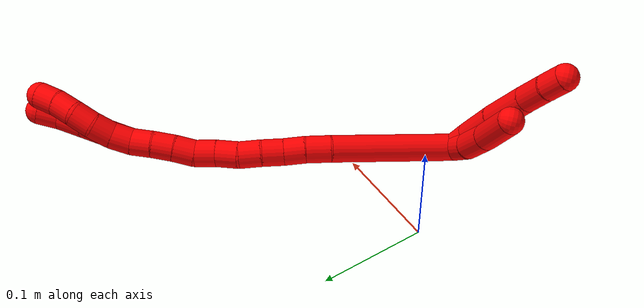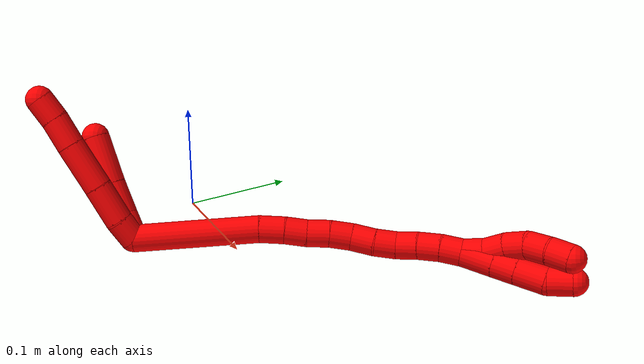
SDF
<sdf version="1.7">
 <world name="default">
  <model name="2">
   <static>0</static>
   <link name="2">
    <collision name="collision-cylinder-e_1_2_8">
     <pose>-0.008163 -0.005109 -0.004757 2.32048 -0.863274 -1.62729</pose>
     <geometry><cylinder><radius>0.0125</radius><length>0.021482</length></cylinder></geometry>
     <surface>
      <friction><ode><mu>1.16</mu><mu2>1.16</mu2><slip1>0</slip1><slip2>0</slip2></ode></friction>
      <contact><ode><kp>1e+06</kp><kd>1</kd><max_vel>0</max_vel><min_depth>0.001</min_depth></ode></contact>
     </surface>
    </collision>
    <visual name="visual-cylinder-e_1_2_8">
     <pose>-0.008163 -0.005109 -0.004757 2.32048 -0.863274 -1.62729</pose>
     <geometry><cylinder><radius>0.0125</radius><length>0.021482</length></cylinder></geometry>
     <material><ambient>1 0 0 1</ambient></material>
    </visual>
    <collision name="collision-cylinder-e_2_8_9">
     <pose>-0.031408 -0.016477 -0.016707 2.42559 -1.00711 -1.9485</pose>
     <geometry><cylinder><radius>0.0125</radius><length>0.035687</length></cylinder></geometry>
     <surface>
      <friction><ode><mu>1.16</mu><mu2>1.16</mu2><slip1>0</slip1><slip2>0</slip2></ode></friction>
      <contact><ode><kp>1e+06</kp><kd>1</kd><max_vel>0</max_vel><min_depth>0.001</min_depth></ode></contact>
     </surface>
    </collision>
    <visual name="visual-cylinder-e_2_8_9">
     <pose>-0.031408 -0.016477 -0.016707 2.42559 -1.00711 -1.9485</pose>
     <geometry><cylinder><radius>0.0125</radius><length>0.035687</length></cylinder></geometry>
     <material><ambient>1 0 0 1</ambient></material>
    </visual>
    <collision name="collision-cylinder-e_3_9_10">
     <pose>-0.064856 -0.029561 -0.033568 2.52685 -0.998323 -2.08712</pose>
     <geometry><cylinder><radius>0.0125</radius><length>0.043696</length></cylinder></geometry>
     <surface>
      <friction><ode><mu>1.16</mu><mu2>1.16</mu2><slip1>0</slip1><slip2>0</slip2></ode></friction>
      <contact><ode><kp>1e+06</kp><kd>1</kd><max_vel>0</max_vel><min_depth>0.001</min_depth></ode></contact>
     </surface>
    </collision>
    <visual name="visual-cylinder-e_3_9_10">
     <pose>-0.064856 -0.029561 -0.033568 2.52685 -0.998323 -2.08712</pose>
     <geometry><cylinder><radius>0.0125</radius><length>0.043696</length></cylinder></geometry>
     <material><ambient>1 0 0 1</ambient></material>
    </visual>
    <collision name="collision-cylinder-e_4_10_11">
     <pose>-0.094794 -0.040055 -0.049163 2.58738 -1.02874 -2.20901</pose>
     <geometry><cylinder><radius>0.0125</radius><length>0.02702</length></cylinder></geometry>
     <surface>
      <friction><ode><mu>1.16</mu><mu2>1.16</mu2><slip1>0</slip1><slip2>0</slip2></ode></friction>
      <contact><ode><kp>1e+06</kp><kd>1</kd><max_vel>0</max_vel><min_depth>0.001</min_depth></ode></contact>
     </surface>
    </collision>
    <visual name="visual-cylinder-e_4_10_11">
     <pose>-0.094794 -0.040055 -0.049163 2.58738 -1.02874 -2.20901</pose>
     <geometry><cylinder><radius>0.0125</radius><length>0.02702</length></cylinder></geometry>
     <material><ambient>1 0 0 1</ambient></material>
    </visual>
    <collision name="collision-cylinder-e_5_11_6">
     <pose>-0.115196 -0.047302 -0.060703 2.57399 -0.924691 -2.08258</pose>
     <geometry><cylinder><radius>0.0125</radius><length>0.022115</length></cylinder></geometry>
     <surface>
      <friction><ode><mu>1.16</mu><mu2>1.16</mu2><slip1>0</slip1><slip2>0</slip2></ode></friction>
      <contact><ode><kp>1e+06</kp><kd>1</kd><max_vel>0</max_vel><min_depth>0.001</min_depth></ode></contact>
     </surface>
    </collision>
    <visual name="visual-cylinder-e_5_11_6">
     <pose>-0.115196 -0.047302 -0.060703 2.57399 -0.924691 -2.08258</pose>
     <geometry><cylinder><radius>0.0125</radius><length>0.022115</length></cylinder></geometry>
     <material><ambient>1 0 0 1</ambient></material>
    </visual>
    <collision name="collision-cylinder-e_1_2_12">
     <pose>-0.010502 0.000434 -0.00511 -3.05677 -1.11653 3.0059</pose>
     <geometry><cylinder><radius>0.0125</radius><length>0.023374</length></cylinder></geometry>
     <surface>
      <friction><ode><mu>1.16</mu><mu2>1.16</mu2><slip1>0</slip1><slip2>0</slip2></ode></friction>
      <contact><ode><kp>1e+06</kp><kd>1</kd><max_vel>0</max_vel><min_depth>0.001</min_depth></ode></contact>
     </surface>
    </collision>
    <visual name="visual-cylinder-e_1_2_12">
     <pose>-0.010502 0.000434 -0.00511 -3.05677 -1.11653 3.0059</pose>
     <geometry><cylinder><radius>0.0125</radius><length>0.023374</length></cylinder></geometry>
     <material><ambient>1 0 0 1</ambient></material>
    </visual>
    <collision name="collision-cylinder-e_2_12_13">
     <pose>-0.035617 -0.001161 -0.015538 2.77706 -1.19933 -2.61491</pose>
     <geometry><cylinder><radius>0.0125</radius><length>0.031365</length></cylinder></geometry>
     <surface>
      <friction><ode><mu>1.16</mu><mu2>1.16</mu2><slip1>0</slip1><slip2>0</slip2></ode></friction>
      <contact><ode><kp>1e+06</kp><kd>1</kd><max_vel>0</max_vel><min_depth>0.001</min_depth></ode></contact>
     </surface>
    </collision>
    <visual name="visual-cylinder-e_2_12_13">
     <pose>-0.035617 -0.001161 -0.015538 2.77706 -1.19933 -2.61491</pose>
     <geometry><cylinder><radius>0.0125</radius><length>0.031365</length></cylinder></geometry>
     <material><ambient>1 0 0 1</ambient></material>
    </visual>
    <collision name="collision-cylinder-e_3_13_5">
     <pose>-0.071688 -0.006775 -0.027088 2.61957 -1.24752 -2.43076</pose>
     <geometry><cylinder><radius>0.0125</radius><length>0.04526</length></cylinder></geometry>
     <surface>
      <friction><ode><mu>1.16</mu><mu2>1.16</mu2><slip1>0</slip1><slip2>0</slip2></ode></friction>
      <contact><ode><kp>1e+06</kp><kd>1</kd><max_vel>0</max_vel><min_depth>0.001</min_depth></ode></contact>
     </surface>
    </collision>
    <visual name="visual-cylinder-e_3_13_5">
     <pose>-0.071688 -0.006775 -0.027088 2.61957 -1.24752 -2.43076</pose>
     <geometry><cylinder><radius>0.0125</radius><length>0.04526</length></cylinder></geometry>
     <material><ambient>1 0 0 1</ambient></material>
    </visual>
    <collision name="collision-cylinder-e_1_2_14">
     <pose>-0.003726 0.016753 0.054645 -0.297492 -0.065092 0.009758</pose>
     <geometry><cylinder><radius>0.0125</radius><length>0.114553</length></cylinder></geometry>
     <surface>
      <friction><ode><mu>1.16</mu><mu2>1.16</mu2><slip1>0</slip1><slip2>0</slip2></ode></friction>
      <contact><ode><kp>1e+06</kp><kd>1</kd><max_vel>0</max_vel><min_depth>0.001</min_depth></ode></contact>
     </surface>
    </collision>
    <visual name="visual-cylinder-e_1_2_14">
     <pose>-0.003726 0.016753 0.054645 -0.297492 -0.065092 0.009758</pose>
     <geometry><cylinder><radius>0.0125</radius><length>0.114553</length></cylinder></geometry>
     <material><ambient>1 0 0 1</ambient></material>
    </visual>
    <collision name="collision-cylinder-e_2_14_15">
     <pose>-0.006781 0.036778 0.120329 -0.28808 0.058132 -0.008434</pose>
     <geometry><cylinder><radius>0.0125</radius><length>0.023068</length></cylinder></geometry>
     <surface>
      <friction><ode><mu>1.16</mu><mu2>1.16</mu2><slip1>0</slip1><slip2>0</slip2></ode></friction>
      <contact><ode><kp>1e+06</kp><kd>1</kd><max_vel>0</max_vel><min_depth>0.001</min_depth></ode></contact>
     </surface>
    </collision>
    <visual name="visual-cylinder-e_2_14_15">
     <pose>-0.006781 0.036778 0.120329 -0.28808 0.058132 -0.008434</pose>
     <geometry><cylinder><radius>0.0125</radius><length>0.023068</length></cylinder></geometry>
     <material><ambient>1 0 0 1</ambient></material>
    </visual>
    <collision name="collision-cylinder-e_3_15_16">
     <pose>-0.004702 0.043424 0.140748 -0.345366 0.140392 -0.024526</pose>
     <geometry><cylinder><radius>0.0125</radius><length>0.020133</length></cylinder></geometry>
     <surface>
      <friction><ode><mu>1.16</mu><mu2>1.16</mu2><slip1>0</slip1><slip2>0</slip2></ode></friction>
      <contact><ode><kp>1e+06</kp><kd>1</kd><max_vel>0</max_vel><min_depth>0.001</min_depth></ode></contact>
     </surface>
    </collision>
    <visual name="visual-cylinder-e_3_15_16">
     <pose>-0.004702 0.043424 0.140748 -0.345366 0.140392 -0.024526</pose>
     <geometry><cylinder><radius>0.0125</radius><length>0.020133</length></cylinder></geometry>
     <material><ambient>1 0 0 1</ambient></material>
    </visual>
    <collision name="collision-cylinder-e_4_16_17">
     <pose>-0.002966 0.049937 0.159842 -0.312466 0.032136 -0.005062</pose>
     <geometry><cylinder><radius>0.0125</radius><length>0.020429</length></cylinder></geometry>
     <surface>
      <friction><ode><mu>1.16</mu><mu2>1.16</mu2><slip1>0</slip1><slip2>0</slip2></ode></friction>
      <contact><ode><kp>1e+06</kp><kd>1</kd><max_vel>0</max_vel><min_depth>0.001</min_depth></ode></contact>
     </surface>
    </collision>
    <visual name="visual-cylinder-e_4_16_17">
     <pose>-0.002966 0.049937 0.159842 -0.312466 0.032136 -0.005062</pose>
     <geometry><cylinder><radius>0.0125</radius><length>0.020429</length></cylinder></geometry>
     <material><ambient>1 0 0 1</ambient></material>
    </visual>
    <collision name="collision-cylinder-e_5_17_18">
     <pose>-0.001088 0.056321 0.179191 -0.324967 0.15125 -0.02484</pose>
     <geometry><cylinder><radius>0.0125</radius><length>0.020569</length></cylinder></geometry>
     <surface>
      <friction><ode><mu>1.16</mu><mu2>1.16</mu2><slip1>0</slip1><slip2>0</slip2></ode></friction>
      <contact><ode><kp>1e+06</kp><kd>1</kd><max_vel>0</max_vel><min_depth>0.001</min_depth></ode></contact>
     </surface>
    </collision>
    <visual name="visual-cylinder-e_5_17_18">
     <pose>-0.001088 0.056321 0.179191 -0.324967 0.15125 -0.02484</pose>
     <geometry><cylinder><radius>0.0125</radius><length>0.020569</length></cylinder></geometry>
     <material><ambient>1 0 0 1</ambient></material>
    </visual>
    <collision name="collision-cylinder-e_6_18_19">
     <pose>0.003004 0.060886 0.199043 -0.128347 0.241976 -0.015626</pose>
     <geometry><cylinder><radius>0.0125</radius><length>0.021221</length></cylinder></geometry>
     <surface>
      <friction><ode><mu>1.16</mu><mu2>1.16</mu2><slip1>0</slip1><slip2>0</slip2></ode></friction>
      <contact><ode><kp>1e+06</kp><kd>1</kd><max_vel>0</max_vel><min_depth>0.001</min_depth></ode></contact>
     </surface>
    </collision>
    <visual name="visual-cylinder-e_6_18_19">
     <pose>0.003004 0.060886 0.199043 -0.128347 0.241976 -0.015626</pose>
     <geometry><cylinder><radius>0.0125</radius><length>0.021221</length></cylinder></geometry>
     <material><ambient>1 0 0 1</ambient></material>
    </visual>
    <collision name="collision-cylinder-e_7_19_20">
     <pose>0.006945 0.06458 0.218886 -0.241974 0.140111 -0.017062</pose>
     <geometry><cylinder><radius>0.0125</radius><length>0.020026</length></cylinder></geometry>
     <surface>
      <friction><ode><mu>1.16</mu><mu2>1.16</mu2><slip1>0</slip1><slip2>0</slip2></ode></friction>
      <contact><ode><kp>1e+06</kp><kd>1</kd><max_vel>0</max_vel><min_depth>0.001</min_depth></ode></contact>
     </surface>
    </collision>
    <visual name="visual-cylinder-e_7_19_20">
     <pose>0.006945 0.06458 0.218886 -0.241974 0.140111 -0.017062</pose>
     <geometry><cylinder><radius>0.0125</radius><length>0.020026</length></cylinder></geometry>
     <material><ambient>1 0 0 1</ambient></material>
    </visual>
    <collision name="collision-cylinder-e_8_20_21">
     <pose>0.008585 0.067109 0.238508 -0.015331 0.024134 -0.000185</pose>
     <geometry><cylinder><radius>0.0125</radius><length>0.02</length></cylinder></geometry>
     <surface>
      <friction><ode><mu>1.16</mu><mu2>1.16</mu2><slip1>0</slip1><slip2>0</slip2></ode></friction>
      <contact><ode><kp>1e+06</kp><kd>1</kd><max_vel>0</max_vel><min_depth>0.001</min_depth></ode></contact>
     </surface>
    </collision>
    <visual name="visual-cylinder-e_8_20_21">
     <pose>0.008585 0.067109 0.238508 -0.015331 0.024134 -0.000185</pose>
     <geometry><cylinder><radius>0.0125</radius><length>0.02</length></cylinder></geometry>
     <material><ambient>1 0 0 1</ambient></material>
    </visual>
    <collision name="collision-cylinder-e_9_21_22">
     <pose>0.009881 0.067856 0.258431 -0.059739 0.105624 -0.003159</pose>
     <geometry><cylinder><radius>0.0125</radius><length>0.020001</length></cylinder></geometry>
     <surface>
      <friction><ode><mu>1.16</mu><mu2>1.16</mu2><slip1>0</slip1><slip2>0</slip2></ode></friction>
      <contact><ode><kp>1e+06</kp><kd>1</kd><max_vel>0</max_vel><min_depth>0.001</min_depth></ode></contact>
     </surface>
    </collision>
    <visual name="visual-cylinder-e_9_21_22">
     <pose>0.009881 0.067856 0.258431 -0.059739 0.105624 -0.003159</pose>
     <geometry><cylinder><radius>0.0125</radius><length>0.020001</length></cylinder></geometry>
     <material><ambient>1 0 0 1</ambient></material>
    </visual>
    <collision name="collision-cylinder-e_10_22_1">
     <pose>0.013096 0.069267 0.278087 -0.083726 0.21788 -0.009163</pose>
     <geometry><cylinder><radius>0.0125</radius><length>0.02</length></cylinder></geometry>
     <surface>
      <friction><ode><mu>1.16</mu><mu2>1.16</mu2><slip1>0</slip1><slip2>0</slip2></ode></friction>
      <contact><ode><kp>1e+06</kp><kd>1</kd><max_vel>0</max_vel><min_depth>0.001</min_depth></ode></contact>
     </surface>
    </collision>
    <visual name="visual-cylinder-e_10_22_1">
     <pose>0.013096 0.069267 0.278087 -0.083726 0.21788 -0.009163</pose>
     <geometry><cylinder><radius>0.0125</radius><length>0.02</length></cylinder></geometry>
     <material><ambient>1 0 0 1</ambient></material>
    </visual>
    <collision name="collision-cylinder-e_1_1_23">
     <pose>0.020001 0.067921 0.30201 0.151209 0.319053 0.024374</pose>
     <geometry><cylinder><radius>0.0125</radius><length>0.030241</length></cylinder></geometry>
     <surface>
      <friction><ode><mu>1.16</mu><mu2>1.16</mu2><slip1>0</slip1><slip2>0</slip2></ode></friction>
      <contact><ode><kp>1e+06</kp><kd>1</kd><max_vel>0</max_vel><min_depth>0.001</min_depth></ode></contact>
     </surface>
    </collision>
    <visual name="visual-cylinder-e_1_1_23">
     <pose>0.020001 0.067921 0.30201 0.151209 0.319053 0.024374</pose>
     <geometry><cylinder><radius>0.0125</radius><length>0.030241</length></cylinder></geometry>
     <material><ambient>1 0 0 1</ambient></material>
    </visual>
    <collision name="collision-cylinder-e_2_23_24">
     <pose>0.027949 0.064265 0.32598 0.151573 0.313421 0.023994</pose>
     <geometry><cylinder><radius>0.0125</radius><length>0.020791</length></cylinder></geometry>
     <surface>
      <friction><ode><mu>1.16</mu><mu2>1.16</mu2><slip1>0</slip1><slip2>0</slip2></ode></friction>
      <contact><ode><kp>1e+06</kp><kd>1</kd><max_vel>0</max_vel><min_depth>0.001</min_depth></ode></contact>
     </surface>
    </collision>
    <visual name="visual-cylinder-e_2_23_24">
     <pose>0.027949 0.064265 0.32598 0.151573 0.313421 0.023994</pose>
     <geometry><cylinder><radius>0.0125</radius><length>0.020791</length></cylinder></geometry>
     <material><ambient>1 0 0 1</ambient></material>
    </visual>
    <collision name="collision-cylinder-e_3_24_25">
     <pose>0.035295 0.060849 0.348481 0.149956 0.311319 0.023576</pose>
     <geometry><cylinder><radius>0.0125</radius><length>0.027038</length></cylinder></geometry>
     <surface>
      <friction><ode><mu>1.16</mu><mu2>1.16</mu2><slip1>0</slip1><slip2>0</slip2></ode></friction>
      <contact><ode><kp>1e+06</kp><kd>1</kd><max_vel>0</max_vel><min_depth>0.001</min_depth></ode></contact>
     </surface>
    </collision>
    <visual name="visual-cylinder-e_3_24_25">
     <pose>0.035295 0.060849 0.348481 0.149956 0.311319 0.023576</pose>
     <geometry><cylinder><radius>0.0125</radius><length>0.027038</length></cylinder></geometry>
     <material><ambient>1 0 0 1</ambient></material>
    </visual>
    <collision name="collision-cylinder-e_4_25_4">
     <pose>0.03967 0.059058 0.372167 -0.012054 0.021286 -0.000128</pose>
     <geometry><cylinder><radius>0.0125</radius><length>0.021929</length></cylinder></geometry>
     <surface>
      <friction><ode><mu>1.16</mu><mu2>1.16</mu2><slip1>0</slip1><slip2>0</slip2></ode></friction>
      <contact><ode><kp>1e+06</kp><kd>1</kd><max_vel>0</max_vel><min_depth>0.001</min_depth></ode></contact>
     </surface>
    </collision>
    <visual name="visual-cylinder-e_4_25_4">
     <pose>0.03967 0.059058 0.372167 -0.012054 0.021286 -0.000128</pose>
     <geometry><cylinder><radius>0.0125</radius><length>0.021929</length></cylinder></geometry>
     <material><ambient>1 0 0 1</ambient></material>
    </visual>
    <collision name="collision-cylinder-e_1_1_26">
     <pose>0.015049 0.069692 0.297807 0.039128 -0.020925 -0.000409</pose>
     <geometry><cylinder><radius>0.0125</radius><length>0.02</length></cylinder></geometry>
     <surface>
      <friction><ode><mu>1.16</mu><mu2>1.16</mu2><slip1>0</slip1><slip2>0</slip2></ode></friction>
      <contact><ode><kp>1e+06</kp><kd>1</kd><max_vel>0</max_vel><min_depth>0.001</min_depth></ode></contact>
     </surface>
    </collision>
    <visual name="visual-cylinder-e_1_1_26">
     <pose>0.015049 0.069692 0.297807 0.039128 -0.020925 -0.000409</pose>
     <geometry><cylinder><radius>0.0125</radius><length>0.02</length></cylinder></geometry>
     <material><ambient>1 0 0 1</ambient></material>
    </visual>
    <collision name="collision-cylinder-e_2_26_27">
     <pose>0.012404 0.067543 0.317335 0.182267 -0.246015 -0.022596</pose>
     <geometry><cylinder><radius>0.0125</radius><length>0.02</length></cylinder></geometry>
     <surface>
      <friction><ode><mu>1.16</mu><mu2>1.16</mu2><slip1>0</slip1><slip2>0</slip2></ode></friction>
      <contact><ode><kp>1e+06</kp><kd>1</kd><max_vel>0</max_vel><min_depth>0.001</min_depth></ode></contact>
     </surface>
    </collision>
    <visual name="visual-cylinder-e_2_26_27">
     <pose>0.012404 0.067543 0.317335 0.182267 -0.246015 -0.022596</pose>
     <geometry><cylinder><radius>0.0125</radius><length>0.02</length></cylinder></geometry>
     <material><ambient>1 0 0 1</ambient></material>
    </visual>
    <collision name="collision-cylinder-e_3_27_28">
     <pose>0.009408 0.062815 0.336406 0.302024 -0.056078 -0.008536</pose>
     <geometry><cylinder><radius>0.0125</radius><length>0.02</length></cylinder></geometry>
     <surface>
      <friction><ode><mu>1.16</mu><mu2>1.16</mu2><slip1>0</slip1><slip2>0</slip2></ode></friction>
      <contact><ode><kp>1e+06</kp><kd>1</kd><max_vel>0</max_vel><min_depth>0.001</min_depth></ode></contact>
     </surface>
    </collision>
    <visual name="visual-cylinder-e_3_27_28">
     <pose>0.009408 0.062815 0.336406 0.302024 -0.056078 -0.008536</pose>
     <geometry><cylinder><radius>0.0125</radius><length>0.02</length></cylinder></geometry>
     <material><ambient>1 0 0 1</ambient></material>
    </visual>
    <collision name="collision-cylinder-e_4_28_29">
     <pose>0.011322 0.05655 0.35505 0.347004 0.249978 0.044035</pose>
     <geometry><cylinder><radius>0.0125</radius><length>0.02</length></cylinder></geometry>
     <surface>
      <friction><ode><mu>1.16</mu><mu2>1.16</mu2><slip1>0</slip1><slip2>0</slip2></ode></friction>
      <contact><ode><kp>1e+06</kp><kd>1</kd><max_vel>0</max_vel><min_depth>0.001</min_depth></ode></contact>
     </surface>
    </collision>
    <visual name="visual-cylinder-e_4_28_29">
     <pose>0.011322 0.05655 0.35505 0.347004 0.249978 0.044035</pose>
     <geometry><cylinder><radius>0.0125</radius><length>0.02</length></cylinder></geometry>
     <material><ambient>1 0 0 1</ambient></material>
    </visual>
    <collision name="collision-cylinder-e_5_29_3">
     <pose>0.016978 0.051196 0.373415 0.218988 0.323927 0.035921</pose>
     <geometry><cylinder><radius>0.0125</radius><length>0.02</length></cylinder></geometry>
     <surface>
      <friction><ode><mu>1.16</mu><mu2>1.16</mu2><slip1>0</slip1><slip2>0</slip2></ode></friction>
      <contact><ode><kp>1e+06</kp><kd>1</kd><max_vel>0</max_vel><min_depth>0.001</min_depth></ode></contact>
     </surface>
    </collision>
    <visual name="visual-cylinder-e_5_29_3">
     <pose>0.016978 0.051196 0.373415 0.218988 0.323927 0.035921</pose>
     <geometry><cylinder><radius>0.0125</radius><length>0.02</length></cylinder></geometry>
     <material><ambient>1 0 0 1</ambient></material>
    </visual>
    <collision name="collision-sphere-3">
     <pose>0.020161 0.049136 0.382669 0 -0 0</pose>
     <geometry><sphere><radius>0.0125</radius></sphere></geometry>
     <surface>
      <friction><ode><mu>1.16</mu><mu2>1.16</mu2><slip1>0</slip1><slip2>0</slip2></ode></friction>
      <contact><ode><kp>1e+06</kp><kd>1</kd><max_vel>0</max_vel><min_depth>0.001</min_depth></ode></contact>
     </surface>
    </collision>
    <visual name="visual-sphere-3">
     <pose>0.020161 0.049136 0.382669 0 -0 0</pose>
     <geometry><sphere><radius>0.0125</radius></sphere></geometry>
     <material><ambient>1 0 0 1</ambient></material>
    </visual>
    <collision name="collision-sphere-29">
     <pose>0.013795 0.053255 0.364162 0 -0 0</pose>
     <geometry><sphere><radius>0.0125</radius></sphere></geometry>
     <surface>
      <friction><ode><mu>1.16</mu><mu2>1.16</mu2><slip1>0</slip1><slip2>0</slip2></ode></friction>
      <contact><ode><kp>1e+06</kp><kd>1</kd><max_vel>0</max_vel><min_depth>0.001</min_depth></ode></contact>
     </surface>
    </collision>
    <visual name="visual-sphere-29">
     <pose>0.013795 0.053255 0.364162 0 -0 0</pose>
     <geometry><sphere><radius>0.0125</radius></sphere></geometry>
     <material><ambient>1 0 0 1</ambient></material>
    </visual>
    <collision name="collision-sphere-28">
     <pose>0.008848 0.059845 0.345938 0 -0 0</pose>
     <geometry><sphere><radius>0.0125</radius></sphere></geometry>
     <surface>
      <friction><ode><mu>1.16</mu><mu2>1.16</mu2><slip1>0</slip1><slip2>0</slip2></ode></friction>
      <contact><ode><kp>1e+06</kp><kd>1</kd><max_vel>0</max_vel><min_depth>0.001</min_depth></ode></contact>
     </surface>
    </collision>
    <visual name="visual-sphere-28">
     <pose>0.008848 0.059845 0.345938 0 -0 0</pose>
     <geometry><sphere><radius>0.0125</radius></sphere></geometry>
     <material><ambient>1 0 0 1</ambient></material>
    </visual>
    <collision name="collision-sphere-27">
     <pose>0.009969 0.065785 0.326874 0 -0 0</pose>
     <geometry><sphere><radius>0.0125</radius></sphere></geometry>
     <surface>
      <friction><ode><mu>1.16</mu><mu2>1.16</mu2><slip1>0</slip1><slip2>0</slip2></ode></friction>
      <contact><ode><kp>1e+06</kp><kd>1</kd><max_vel>0</max_vel><min_depth>0.001</min_depth></ode></contact>
     </surface>
    </collision>
    <visual name="visual-sphere-27">
     <pose>0.009969 0.065785 0.326874 0 -0 0</pose>
     <geometry><sphere><radius>0.0125</radius></sphere></geometry>
     <material><ambient>1 0 0 1</ambient></material>
    </visual>
    <collision name="collision-sphere-26">
     <pose>0.01484 0.069301 0.307797 0 -0 0</pose>
     <geometry><sphere><radius>0.0125</radius></sphere></geometry>
     <surface>
      <friction><ode><mu>1.16</mu><mu2>1.16</mu2><slip1>0</slip1><slip2>0</slip2></ode></friction>
      <contact><ode><kp>1e+06</kp><kd>1</kd><max_vel>0</max_vel><min_depth>0.001</min_depth></ode></contact>
     </surface>
    </collision>
    <visual name="visual-sphere-26">
     <pose>0.01484 0.069301 0.307797 0 -0 0</pose>
     <geometry><sphere><radius>0.0125</radius></sphere></geometry>
     <material><ambient>1 0 0 1</ambient></material>
    </visual>
    <collision name="collision-sphere-4">
     <pose>0.039903 0.05919 0.383128 0 -0 0</pose>
     <geometry><sphere><radius>0.0125</radius></sphere></geometry>
     <surface>
      <friction><ode><mu>1.16</mu><mu2>1.16</mu2><slip1>0</slip1><slip2>0</slip2></ode></friction>
      <contact><ode><kp>1e+06</kp><kd>1</kd><max_vel>0</max_vel><min_depth>0.001</min_depth></ode></contact>
     </surface>
    </collision>
    <visual name="visual-sphere-4">
     <pose>0.039903 0.05919 0.383128 0 -0 0</pose>
     <geometry><sphere><radius>0.0125</radius></sphere></geometry>
     <material><ambient>1 0 0 1</ambient></material>
    </visual>
    <collision name="collision-sphere-25">
     <pose>0.039436 0.058926 0.361206 0 -0 0</pose>
     <geometry><sphere><radius>0.0125</radius></sphere></geometry>
     <surface>
      <friction><ode><mu>1.16</mu><mu2>1.16</mu2><slip1>0</slip1><slip2>0</slip2></ode></friction>
      <contact><ode><kp>1e+06</kp><kd>1</kd><max_vel>0</max_vel><min_depth>0.001</min_depth></ode></contact>
     </surface>
    </collision>
    <visual name="visual-sphere-25">
     <pose>0.039436 0.058926 0.361206 0 -0 0</pose>
     <geometry><sphere><radius>0.0125</radius></sphere></geometry>
     <material><ambient>1 0 0 1</ambient></material>
    </visual>
    <collision name="collision-sphere-24">
     <pose>0.031154 0.062771 0.335756 0 -0 0</pose>
     <geometry><sphere><radius>0.0125</radius></sphere></geometry>
     <surface>
      <friction><ode><mu>1.16</mu><mu2>1.16</mu2><slip1>0</slip1><slip2>0</slip2></ode></friction>
      <contact><ode><kp>1e+06</kp><kd>1</kd><max_vel>0</max_vel><min_depth>0.001</min_depth></ode></contact>
     </surface>
    </collision>
    <visual name="visual-sphere-24">
     <pose>0.031154 0.062771 0.335756 0 -0 0</pose>
     <geometry><sphere><radius>0.0125</radius></sphere></geometry>
     <material><ambient>1 0 0 1</ambient></material>
    </visual>
    <collision name="collision-sphere-23">
     <pose>0.024744 0.065758 0.316204 0 -0 0</pose>
     <geometry><sphere><radius>0.0125</radius></sphere></geometry>
     <surface>
      <friction><ode><mu>1.16</mu><mu2>1.16</mu2><slip1>0</slip1><slip2>0</slip2></ode></friction>
      <contact><ode><kp>1e+06</kp><kd>1</kd><max_vel>0</max_vel><min_depth>0.001</min_depth></ode></contact>
     </surface>
    </collision>
    <visual name="visual-sphere-23">
     <pose>0.024744 0.065758 0.316204 0 -0 0</pose>
     <geometry><sphere><radius>0.0125</radius></sphere></geometry>
     <material><ambient>1 0 0 1</ambient></material>
    </visual>
    <collision name="collision-sphere-1">
     <pose>0.015258 0.070083 0.287817 0 -0 0</pose>
     <geometry><sphere><radius>0.0125</radius></sphere></geometry>
     <surface>
      <friction><ode><mu>1.16</mu><mu2>1.16</mu2><slip1>0</slip1><slip2>0</slip2></ode></friction>
      <contact><ode><kp>1e+06</kp><kd>1</kd><max_vel>0</max_vel><min_depth>0.001</min_depth></ode></contact>
     </surface>
    </collision>
    <visual name="visual-sphere-1">
     <pose>0.015258 0.070083 0.287817 0 -0 0</pose>
     <geometry><sphere><radius>0.0125</radius></sphere></geometry>
     <material><ambient>1 0 0 1</ambient></material>
    </visual>
    <collision name="collision-sphere-22">
     <pose>0.010935 0.06845 0.268358 0 -0 0</pose>
     <geometry><sphere><radius>0.0125</radius></sphere></geometry>
     <surface>
      <friction><ode><mu>1.16</mu><mu2>1.16</mu2><slip1>0</slip1><slip2>0</slip2></ode></friction>
      <contact><ode><kp>1e+06</kp><kd>1</kd><max_vel>0</max_vel><min_depth>0.001</min_depth></ode></contact>
     </surface>
    </collision>
    <visual name="visual-sphere-22">
     <pose>0.010935 0.06845 0.268358 0 -0 0</pose>
     <geometry><sphere><radius>0.0125</radius></sphere></geometry>
     <material><ambient>1 0 0 1</ambient></material>
    </visual>
    <collision name="collision-sphere-21">
     <pose>0.008826 0.067263 0.248504 0 -0 0</pose>
     <geometry><sphere><radius>0.0125</radius></sphere></geometry>
     <surface>
      <friction><ode><mu>1.16</mu><mu2>1.16</mu2><slip1>0</slip1><slip2>0</slip2></ode></friction>
      <contact><ode><kp>1e+06</kp><kd>1</kd><max_vel>0</max_vel><min_depth>0.001</min_depth></ode></contact>
     </surface>
    </collision>
    <visual name="visual-sphere-21">
     <pose>0.008826 0.067263 0.248504 0 -0 0</pose>
     <geometry><sphere><radius>0.0125</radius></sphere></geometry>
     <material><ambient>1 0 0 1</ambient></material>
    </visual>
    <collision name="collision-sphere-6">
     <pose>-0.124025 -0.050881 -0.066317 0 -0 0</pose>
     <geometry><sphere><radius>0.0125</radius></sphere></geometry>
     <surface>
      <friction><ode><mu>1.16</mu><mu2>1.16</mu2><slip1>0</slip1><slip2>0</slip2></ode></friction>
      <contact><ode><kp>1e+06</kp><kd>1</kd><max_vel>0</max_vel><min_depth>0.001</min_depth></ode></contact>
     </surface>
    </collision>
    <visual name="visual-sphere-6">
     <pose>-0.124025 -0.050881 -0.066317 0 -0 0</pose>
     <geometry><sphere><radius>0.0125</radius></sphere></geometry>
     <material><ambient>1 0 0 1</ambient></material>
    </visual>
    <collision name="collision-sphere-11">
     <pose>-0.106367 -0.043723 -0.055089 0 -0 0</pose>
     <geometry><sphere><radius>0.0125</radius></sphere></geometry>
     <surface>
      <friction><ode><mu>1.16</mu><mu2>1.16</mu2><slip1>0</slip1><slip2>0</slip2></ode></friction>
      <contact><ode><kp>1e+06</kp><kd>1</kd><max_vel>0</max_vel><min_depth>0.001</min_depth></ode></contact>
     </surface>
    </collision>
    <visual name="visual-sphere-11">
     <pose>-0.106367 -0.043723 -0.055089 0 -0 0</pose>
     <geometry><sphere><radius>0.0125</radius></sphere></geometry>
     <material><ambient>1 0 0 1</ambient></material>
    </visual>
    <collision name="collision-sphere-10">
     <pose>-0.083221 -0.036387 -0.043237 0 -0 0</pose>
     <geometry><sphere><radius>0.0125</radius></sphere></geometry>
     <surface>
      <friction><ode><mu>1.16</mu><mu2>1.16</mu2><slip1>0</slip1><slip2>0</slip2></ode></friction>
      <contact><ode><kp>1e+06</kp><kd>1</kd><max_vel>0</max_vel><min_depth>0.001</min_depth></ode></contact>
     </surface>
    </collision>
    <visual name="visual-sphere-10">
     <pose>-0.083221 -0.036387 -0.043237 0 -0 0</pose>
     <geometry><sphere><radius>0.0125</radius></sphere></geometry>
     <material><ambient>1 0 0 1</ambient></material>
    </visual>
    <collision name="collision-sphere-9">
     <pose>-0.046491 -0.022734 -0.023899 0 -0 0</pose>
     <geometry><sphere><radius>0.0125</radius></sphere></geometry>
     <surface>
      <friction><ode><mu>1.16</mu><mu2>1.16</mu2><slip1>0</slip1><slip2>0</slip2></ode></friction>
      <contact><ode><kp>1e+06</kp><kd>1</kd><max_vel>0</max_vel><min_depth>0.001</min_depth></ode></contact>
     </surface>
    </collision>
    <visual name="visual-sphere-9">
     <pose>-0.046491 -0.022734 -0.023899 0 -0 0</pose>
     <geometry><sphere><radius>0.0125</radius></sphere></geometry>
     <material><ambient>1 0 0 1</ambient></material>
    </visual>
    <collision name="collision-sphere-2">
     <geometry><sphere><radius>0.0125</radius></sphere></geometry>
     <surface>
      <friction><ode><mu>1.16</mu><mu2>1.16</mu2><slip1>0</slip1><slip2>0</slip2></ode></friction>
      <contact><ode><kp>1e+06</kp><kd>1</kd><max_vel>0</max_vel><min_depth>0.001</min_depth></ode></contact>
     </surface>
    </collision>
    <visual name="visual-sphere-2">
     <geometry><sphere><radius>0.0125</radius></sphere></geometry>
     <material><ambient>1 0 0 1</ambient></material>
    </visual>
    <collision name="collision-sphere-19">
     <pose>0.005547 0.062205 0.209259 0 -0 0</pose>
     <geometry><sphere><radius>0.0125</radius></sphere></geometry>
     <surface>
      <friction><ode><mu>1.16</mu><mu2>1.16</mu2><slip1>0</slip1><slip2>0</slip2></ode></friction>
      <contact><ode><kp>1e+06</kp><kd>1</kd><max_vel>0</max_vel><min_depth>0.001</min_depth></ode></contact>
     </surface>
    </collision>
    <visual name="visual-sphere-19">
     <pose>0.005547 0.062205 0.209259 0 -0 0</pose>
     <geometry><sphere><radius>0.0125</radius></sphere></geometry>
     <material><ambient>1 0 0 1</ambient></material>
    </visual>
    <collision name="collision-sphere-8">
     <pose>-0.016325 -0.010219 -0.009514 0 -0 0</pose>
     <geometry><sphere><radius>0.0125</radius></sphere></geometry>
     <surface>
      <friction><ode><mu>1.16</mu><mu2>1.16</mu2><slip1>0</slip1><slip2>0</slip2></ode></friction>
      <contact><ode><kp>1e+06</kp><kd>1</kd><max_vel>0</max_vel><min_depth>0.001</min_depth></ode></contact>
     </surface>
    </collision>
    <visual name="visual-sphere-8">
     <pose>-0.016325 -0.010219 -0.009514 0 -0 0</pose>
     <geometry><sphere><radius>0.0125</radius></sphere></geometry>
     <material><ambient>1 0 0 1</ambient></material>
    </visual>
    <collision name="collision-sphere-12">
     <pose>-0.021004 0.000869 -0.01022 0 -0 0</pose>
     <geometry><sphere><radius>0.0125</radius></sphere></geometry>
     <surface>
      <friction><ode><mu>1.16</mu><mu2>1.16</mu2><slip1>0</slip1><slip2>0</slip2></ode></friction>
      <contact><ode><kp>1e+06</kp><kd>1</kd><max_vel>0</max_vel><min_depth>0.001</min_depth></ode></contact>
     </surface>
    </collision>
    <visual name="visual-sphere-12">
     <pose>-0.021004 0.000869 -0.01022 0 -0 0</pose>
     <geometry><sphere><radius>0.0125</radius></sphere></geometry>
     <material><ambient>1 0 0 1</ambient></material>
    </visual>
    <collision name="collision-sphere-13">
     <pose>-0.05023 -0.00319 -0.020857 0 -0 0</pose>
     <geometry><sphere><radius>0.0125</radius></sphere></geometry>
     <surface>
      <friction><ode><mu>1.16</mu><mu2>1.16</mu2><slip1>0</slip1><slip2>0</slip2></ode></friction>
      <contact><ode><kp>1e+06</kp><kd>1</kd><max_vel>0</max_vel><min_depth>0.001</min_depth></ode></contact>
     </surface>
    </collision>
    <visual name="visual-sphere-13">
     <pose>-0.05023 -0.00319 -0.020857 0 -0 0</pose>
     <geometry><sphere><radius>0.0125</radius></sphere></geometry>
     <material><ambient>1 0 0 1</ambient></material>
    </visual>
    <collision name="collision-sphere-5">
     <pose>-0.093146 -0.010359 -0.03332 0 -0 0</pose>
     <geometry><sphere><radius>0.0125</radius></sphere></geometry>
     <surface>
      <friction><ode><mu>1.16</mu><mu2>1.16</mu2><slip1>0</slip1><slip2>0</slip2></ode></friction>
      <contact><ode><kp>1e+06</kp><kd>1</kd><max_vel>0</max_vel><min_depth>0.001</min_depth></ode></contact>
     </surface>
    </collision>
    <visual name="visual-sphere-5">
     <pose>-0.093146 -0.010359 -0.03332 0 -0 0</pose>
     <geometry><sphere><radius>0.0125</radius></sphere></geometry>
     <material><ambient>1 0 0 1</ambient></material>
    </visual>
    <collision name="collision-sphere-14">
     <pose>-0.007451 0.033507 0.109289 0 -0 0</pose>
     <geometry><sphere><radius>0.0125</radius></sphere></geometry>
     <surface>
      <friction><ode><mu>1.16</mu><mu2>1.16</mu2><slip1>0</slip1><slip2>0</slip2></ode></friction>
      <contact><ode><kp>1e+06</kp><kd>1</kd><max_vel>0</max_vel><min_depth>0.001</min_depth></ode></contact>
     </surface>
    </collision>
    <visual name="visual-sphere-14">
     <pose>-0.007451 0.033507 0.109289 0 -0 0</pose>
     <geometry><sphere><radius>0.0125</radius></sphere></geometry>
     <material><ambient>1 0 0 1</ambient></material>
    </visual>
    <collision name="collision-sphere-15">
     <pose>-0.006111 0.04005 0.131369 0 -0 0</pose>
     <geometry><sphere><radius>0.0125</radius></sphere></geometry>
     <surface>
      <friction><ode><mu>1.16</mu><mu2>1.16</mu2><slip1>0</slip1><slip2>0</slip2></ode></friction>
      <contact><ode><kp>1e+06</kp><kd>1</kd><max_vel>0</max_vel><min_depth>0.001</min_depth></ode></contact>
     </surface>
    </collision>
    <visual name="visual-sphere-15">
     <pose>-0.006111 0.04005 0.131369 0 -0 0</pose>
     <geometry><sphere><radius>0.0125</radius></sphere></geometry>
     <material><ambient>1 0 0 1</ambient></material>
    </visual>
    <collision name="collision-sphere-16">
     <pose>-0.003294 0.046799 0.150127 0 -0 0</pose>
     <geometry><sphere><radius>0.0125</radius></sphere></geometry>
     <surface>
      <friction><ode><mu>1.16</mu><mu2>1.16</mu2><slip1>0</slip1><slip2>0</slip2></ode></friction>
      <contact><ode><kp>1e+06</kp><kd>1</kd><max_vel>0</max_vel><min_depth>0.001</min_depth></ode></contact>
     </surface>
    </collision>
    <visual name="visual-sphere-16">
     <pose>-0.003294 0.046799 0.150127 0 -0 0</pose>
     <geometry><sphere><radius>0.0125</radius></sphere></geometry>
     <material><ambient>1 0 0 1</ambient></material>
    </visual>
    <collision name="collision-sphere-17">
     <pose>-0.002637 0.053075 0.169557 0 -0 0</pose>
     <geometry><sphere><radius>0.0125</radius></sphere></geometry>
     <surface>
      <friction><ode><mu>1.16</mu><mu2>1.16</mu2><slip1>0</slip1><slip2>0</slip2></ode></friction>
      <contact><ode><kp>1e+06</kp><kd>1</kd><max_vel>0</max_vel><min_depth>0.001</min_depth></ode></contact>
     </surface>
    </collision>
    <visual name="visual-sphere-17">
     <pose>-0.002637 0.053075 0.169557 0 -0 0</pose>
     <geometry><sphere><radius>0.0125</radius></sphere></geometry>
     <material><ambient>1 0 0 1</ambient></material>
    </visual>
    <collision name="collision-sphere-18">
     <pose>0.000462 0.059568 0.188826 0 -0 0</pose>
     <geometry><sphere><radius>0.0125</radius></sphere></geometry>
     <surface>
      <friction><ode><mu>1.16</mu><mu2>1.16</mu2><slip1>0</slip1><slip2>0</slip2></ode></friction>
      <contact><ode><kp>1e+06</kp><kd>1</kd><max_vel>0</max_vel><min_depth>0.001</min_depth></ode></contact>
     </surface>
    </collision>
    <visual name="visual-sphere-18">
     <pose>0.000462 0.059568 0.188826 0 -0 0</pose>
     <geometry><sphere><radius>0.0125</radius></sphere></geometry>
     <material><ambient>1 0 0 1</ambient></material>
    </visual>
    <collision name="collision-sphere-20">
     <pose>0.008344 0.066956 0.228512 0 -0 0</pose>
     <geometry><sphere><radius>0.0125</radius></sphere></geometry>
     <surface>
      <friction><ode><mu>1.16</mu><mu2>1.16</mu2><slip1>0</slip1><slip2>0</slip2></ode></friction>
      <contact><ode><kp>1e+06</kp><kd>1</kd><max_vel>0</max_vel><min_depth>0.001</min_depth></ode></contact>
     </surface>
    </collision>
    <visual name="visual-sphere-20">
     <pose>0.008344 0.066956 0.228512 0 -0 0</pose>
     <geometry><sphere><radius>0.0125</radius></sphere></geometry>
     <material><ambient>1 0 0 1</ambient></material>
    </visual>
    <inertial>
     <pose>-0.012613 0.027368 0.137806 0 -0 0</pose>
     <mass>0.75</mass>
     <inertia>
      <ixx>0.000126</ixx>
      <ixy>0</ixy>
      <ixz>0</ixz>
      <iyy>0.000172</iyy>
      <iyz>0</iyz>
      <izz>3.5e-05</izz>
     </inertia>
    </inertial>
   </link>
   <pose>0.056135 -0.082291 0.011968 -1.22458 1.04596 -0.48348</pose>
  </model>
 </world>
</sdf>
